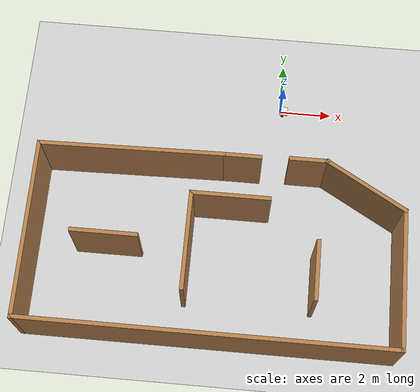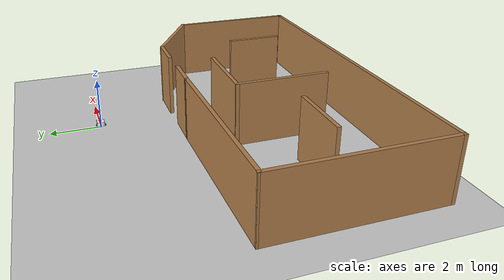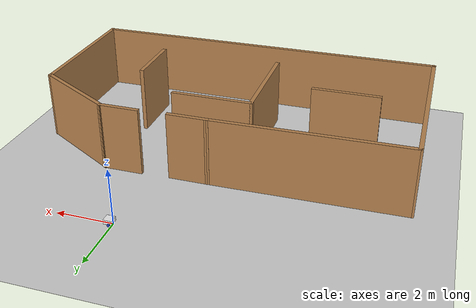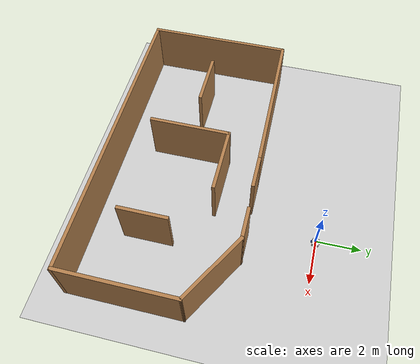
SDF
<sdf version="1.7">
 <world name="default">
  <light name="sun" type="directional">
   <pose>0 0 10 0 -0 0</pose>
   <diffuse>0.8 0.8 0.8 1</diffuse>
   <specular>0.2 0.2 0.2 1</specular>
   <attenuation>
    <range>1000</range>
    <constant>0.9</constant>
    <linear>0.01</linear>
    <quadratic>0.001</quadratic>
   </attenuation>
   <direction>-0.5 0.1 -0.9</direction>
   <spot><inner_angle>0</inner_angle><outer_angle>0</outer_angle><falloff>0</falloff></spot>
  </light>
  <model name="ground_plane">
   <static>1</static>
   <link name="link">
    <collision name="collision">
     <geometry><plane><normal>0 0 1</normal><size>100 100</size></plane></geometry>
     <surface>
      <contact><collide_bitmask>65535</collide_bitmask></contact>
      <friction><ode><mu>100</mu><mu2>50</mu2></ode></friction>
     </surface>
    </collision>
    <visual name="visual">
     <cast_shadows>0</cast_shadows>
     <geometry><plane><normal>0 0 1</normal><size>100 100</size></plane></geometry>
     <material>
      <script><uri>file://media/materials/scripts/gazebo.material</uri><name>Gazebo/Grey</name></script>
     </material>
    </visual>
   </link>
  </model>
  <gravity>0 0 -9.8</gravity>
  <magnetic_field>6e-06 2.3e-05 -4.2e-05</magnetic_field>
  <atmosphere type="adiabatic"/>
  <physics type="ode">
   <max_step_size>0.001</max_step_size>
   <real_time_factor>1</real_time_factor>
   <real_time_update_rate>1000</real_time_update_rate>
  </physics>
  <scene><ambient>0.4 0.4 0.4 1</ambient><background>0.7 0.7 0.7 1</background><shadows>1</shadows></scene>
  <audio><device>default</device></audio>
  <spherical_coordinates>
   <surface_model>EARTH_WGS84</surface_model>
   <latitude_deg>0</latitude_deg>
   <longitude_deg>0</longitude_deg>
   <elevation>0</elevation>
   <heading_deg>0</heading_deg>
  </spherical_coordinates>
  <model name="my_bot">
   <link name="base_link">
    <inertial>
     <pose>0.0725 0 0.05625 0 -0 0</pose>
     <mass>2</mass>
     <inertia>
      <ixx>0.0166719</ixx>
      <ixy>0</ixy>
      <ixz>0.00253125</ixz>
      <iyy>0.0197094</iyy>
      <iyz>0</iyz>
      <izz>0.0260375</izz>
     </inertia>
    </inertial>
    <collision name="base_link_fixed_joint_lump__chassis_collision">
     <pose>0.05 0 0.075 0 -0 0</pose>
     <geometry><box><size>0.3 0.3 0.15</size></box></geometry>
    </collision>
    <collision name="base_link_fixed_joint_lump__caster_wheel_collision_1">
     <pose>0.14 0 0 1.5708 -0 0</pose>
     <geometry><sphere><radius>0.05</radius></sphere></geometry>
     <surface><friction><ode><mu>0</mu><mu2>0</mu2></ode></friction></surface>
    </collision>
    <visual name="base_link_fixed_joint_lump__chassis_visual">
     <pose>0.05 0 0.075 0 -0 0</pose>
     <geometry><box><size>0.3 0.3 0.15</size></box></geometry>
     <material>
      <script><name>Gazebo/White</name><uri>file://media/materials/scripts/gazebo.material</uri></script>
     </material>
    </visual>
    <visual name="base_link_fixed_joint_lump__caster_wheel_visual_1">
     <pose>0.14 0 0 1.5708 -0 0</pose>
     <geometry><sphere><radius>0.05</radius></sphere></geometry>
     <material>
      <script><name>Gazebo/Black</name><uri>file://media/materials/scripts/gazebo.material</uri></script>
     </material>
    </visual>
   </link>
   <joint name="left_wheel_joint" type="revolute">
    <pose relative_to="base_link">0 0.175 0 -1.5708 0 0</pose>
    <parent>base_link</parent>
    <child>left_wheel</child>
    <axis>
     <xyz>0 0 1</xyz>
     <limit><lower>-1e+16</lower><upper>1e+16</upper></limit>
     <dynamics><spring_reference>0</spring_reference><spring_stiffness>0</spring_stiffness></dynamics>
    </axis>
   </joint>
   <link name="left_wheel">
    <pose relative_to="left_wheel_joint">0 0 0 0 -0 0</pose>
    <inertial>
     <mass>0.5</mass>
     <inertia><ixx>0.015</ixx><ixy>0</ixy><ixz>0</ixz><iyy>0.015</iyy><iyz>0</iyz><izz>0.0225</izz></inertia>
    </inertial>
    <collision name="left_wheel_collision">
     <geometry><cylinder><length>0.04</length><radius>0.05</radius></cylinder></geometry>
    </collision>
    <visual name="left_wheel_visual">
     <geometry><cylinder><length>0.04</length><radius>0.05</radius></cylinder></geometry>
     <material>
      <script><name>Gazebo/Blue</name><uri>file://media/materials/scripts/gazebo.material</uri></script>
     </material>
    </visual>
   </link>
   <joint name="right_wheel_joint" type="revolute">
    <pose relative_to="base_link">0 -0.175 0 1.5708 -0 0</pose>
    <parent>base_link</parent>
    <child>right_wheel</child>
    <axis>
     <xyz>0 0 -1</xyz>
     <limit><lower>-1e+16</lower><upper>1e+16</upper></limit>
     <dynamics><spring_reference>0</spring_reference><spring_stiffness>0</spring_stiffness></dynamics>
    </axis>
   </joint>
   <link name="right_wheel">
    <pose relative_to="right_wheel_joint">0 0 0 0 -0 0</pose>
    <inertial>
     <mass>0.5</mass>
     <inertia><ixx>0.015</ixx><ixy>0</ixy><ixz>0</ixz><iyy>0.015</iyy><iyz>0</iyz><izz>0.0225</izz></inertia>
    </inertial>
    <collision name="right_wheel_collision">
     <geometry><cylinder><length>0.04</length><radius>0.05</radius></cylinder></geometry>
    </collision>
    <visual name="right_wheel_visual">
     <geometry><cylinder><length>0.04</length><radius>0.05</radius></cylinder></geometry>
     <material>
      <script><name>Gazebo/Blue</name><uri>file://media/materials/scripts/gazebo.material</uri></script>
     </material>
    </visual>
   </link>
   <static>0</static>
   <plugin name="diff_drive" filename="libgazebo_ros_diff_drive.so">
    <left_joint>left_wheel_joint</left_joint>
    <right_joint>right_wheel_joint</right_joint>
    <wheel_separation>0.35</wheel_separation>
    <wheel_diameter>0.1</wheel_diameter>
    <max_wheel_torque>200</max_wheel_torque>
    <max_wheel_acceleration>10.0</max_wheel_acceleration>
    <odometry_frame>odom</odometry_frame>
    <robot_base_frame>base_link</robot_base_frame>
    <publish_odom>1</publish_odom>
    <publish_odom_tf>1</publish_odom_tf>
    <publish_wheel_tf>1</publish_wheel_tf>
   </plugin>
   <pose>0.07631 0.000812 0.049999 7e-06 -1e-05 -0.001769</pose>
  </model>
  <model name="walls1">
   <pose>-2.10577 -4.94 0 0 -0 0</pose>
   <link name="Wall_1">
    <collision name="Wall_1_Collision">
     <geometry><box><size>1.5 0.15 2.5</size></box></geometry>
     <pose>0 0 1.25 0 -0 0</pose>
    </collision>
    <visual name="Wall_1_Visual">
     <pose>0 0 1.25 0 -0 0</pose>
     <geometry><box><size>1.5 0.15 2.5</size></box></geometry>
     <material>
      <script><uri>file://media/materials/scripts/gazebo.material</uri><name>Gazebo/Wood</name></script>
      <ambient>1 1 1 1</ambient>
     </material>
     <meta><layer>0</layer></meta>
    </visual>
    <pose>0.720766 1.86 0 0 -0 0</pose>
   </link>
   <link name="Wall_10">
    <collision name="Wall_10_Collision">
     <geometry><box><size>7.00995 0.15 2.5</size></box></geometry>
     <pose>0 0 1.25 0 -0 0</pose>
    </collision>
    <visual name="Wall_10_Visual">
     <pose>0 0 1.25 0 -0 0</pose>
     <geometry><box><size>7.00995 0.15 2.5</size></box></geometry>
     <material>
      <script><uri>file://media/materials/scripts/gazebo.material</uri><name>Gazebo/Wood</name></script>
      <ambient>1 1 1 1</ambient>
     </material>
     <meta><layer>0</layer></meta>
    </visual>
    <pose>-3.38364 1.7975 0 0 -0 0.018223</pose>
   </link>
   <link name="Wall_13">
    <collision name="Wall_13_Collision">
     <geometry><box><size>3 0.15 2.5</size></box></geometry>
     <pose>0 0 1.25 0 -0 0</pose>
    </collision>
    <visual name="Wall_13_Visual">
     <pose>0 0 1.25 0 -0 0</pose>
     <geometry><box><size>3 0.15 2.5</size></box></geometry>
     <material>
      <script><uri>file://media/materials/scripts/gazebo.material</uri><name>Gazebo/Wood</name></script>
      <ambient>1 1 1 1</ambient>
     </material>
     <meta><layer>0</layer></meta>
    </visual>
    <pose>0.424034 0.261416 0 0 -0 3.14159</pose>
   </link>
   <link name="Wall_14">
    <collision name="Wall_14_Collision">
     <geometry><box><size>3.75 0.15 2.5</size></box></geometry>
     <pose>0 0 1.25 0 -0 0</pose>
    </collision>
    <visual name="Wall_14_Visual">
     <pose>0 0 1.25 0 -0 0</pose>
     <geometry><box><size>3.75 0.15 2.5</size></box></geometry>
     <material>
      <script><uri>file://media/materials/scripts/gazebo.material</uri><name>Gazebo/Wood</name></script>
      <ambient>1 1 1 1</ambient>
     </material>
     <meta><layer>0</layer></meta>
    </visual>
    <pose>-1.00097 -1.53858 0 0 -0 -1.5708</pose>
   </link>
   <link name="Wall_16">
    <collision name="Wall_16_Collision">
     <geometry><box><size>2.5 0.15 2.5</size></box></geometry>
     <pose>0 0 1.25 0 -0 0</pose>
    </collision>
    <visual name="Wall_16_Visual">
     <pose>0 0 1.25 0 -0 0</pose>
     <geometry><box><size>2.5 0.15 2.5</size></box></geometry>
     <material>
      <script><uri>file://media/materials/scripts/gazebo.material</uri><name>Gazebo/Wood</name></script>
      <ambient>1 1 1 1</ambient>
     </material>
     <meta><layer>0</layer></meta>
    </visual>
    <pose>-3.9956 -1.52869 0 0 -0 0</pose>
   </link>
   <link name="Wall_18">
    <collision name="Wall_18_Collision">
     <geometry><box><size>2.25 0.15 2.5</size></box></geometry>
     <pose>0 0 1.25 0 -0 0</pose>
    </collision>
    <visual name="Wall_18_Visual">
     <pose>0 0 1.25 0 -0 0</pose>
     <geometry><box><size>2.25 0.15 2.5</size></box></geometry>
     <material>
      <script><uri>file://media/materials/scripts/gazebo.material</uri><name>Gazebo/Wood</name></script>
      <ambient>1 1 1 1</ambient>
     </material>
     <meta><layer>0</layer></meta>
    </visual>
    <pose>3.7196 -2.25687 0 0 -0 -1.5708</pose>
   </link>
   <link name="Wall_3">
    <collision name="Wall_3_Collision">
     <geometry><box><size>1.5 0.15 2.5</size></box></geometry>
     <pose>0 0 1.25 0 -0 0</pose>
    </collision>
    <visual name="Wall_3_Visual">
     <pose>0 0 1.25 0 -0 0</pose>
     <geometry><box><size>1.5 0.15 2.5</size></box></geometry>
     <material>
      <script><uri>file://media/materials/scripts/gazebo.material</uri><name>Gazebo/Wood</name></script>
      <ambient>1 1 1 1</ambient>
     </material>
     <meta><layer>0</layer></meta>
    </visual>
    <pose>3.21077 1.91 0 0 -0 0</pose>
   </link>
   <link name="Wall_4">
    <collision name="Wall_4_Collision">
     <geometry><box><size>3.5 0.15 2.5</size></box></geometry>
     <pose>0 0 1.25 0 -0 0</pose>
    </collision>
    <visual name="Wall_4_Visual">
     <pose>0 0 1.25 0 -0 0</pose>
     <geometry><box><size>3.5 0.15 2.5</size></box></geometry>
     <material>
      <script><uri>file://media/materials/scripts/gazebo.material</uri><name>Gazebo/Wood</name></script>
      <ambient>1 1 1 1</ambient>
     </material>
     <meta><layer>0</layer></meta>
    </visual>
    <pose>5.33636 1.0725 0 0 -0 -0.523599</pose>
   </link>
   <link name="Wall_7">
    <collision name="Wall_7_Collision">
     <geometry><box><size>5.25 0.15 2.5</size></box></geometry>
     <pose>0 0 1.25 0 -0 0</pose>
    </collision>
    <visual name="Wall_7_Visual">
     <pose>0 0 1.25 0 -0 0</pose>
     <geometry><box><size>5.25 0.15 2.5</size></box></geometry>
     <material>
      <script><uri>file://media/materials/scripts/gazebo.material</uri><name>Gazebo/Wood</name></script>
      <ambient>1 1 1 1</ambient>
     </material>
     <meta><layer>0</layer></meta>
    </visual>
    <pose>6.78695 -2.315 0 0 -0 -1.5708</pose>
   </link>
   <link name="Wall_8">
    <collision name="Wall_8_Collision">
     <geometry><box><size>13.75 0.15 2.5</size></box></geometry>
     <pose>0 0 1.25 0 -0 0</pose>
    </collision>
    <visual name="Wall_8_Visual">
     <pose>0 0 1.25 0 -0 0</pose>
     <geometry><box><size>13.75 0.15 2.5</size></box></geometry>
     <material>
      <script><uri>file://media/materials/scripts/gazebo.material</uri><name>Gazebo/Wood</name></script>
      <ambient>1 1 1 1</ambient>
     </material>
     <meta><layer>0</layer></meta>
    </visual>
    <pose>-0.013049 -4.865 0 0 -0 3.14159</pose>
   </link>
   <link name="Wall_9">
    <collision name="Wall_9_Collision">
     <geometry><box><size>6.75 0.15 2.5</size></box></geometry>
     <pose>0 0 1.25 0 -0 0</pose>
    </collision>
    <visual name="Wall_9_Visual">
     <pose>0 0 1.25 0 -0 0</pose>
     <geometry><box><size>6.75 0.15 2.5</size></box></geometry>
     <material>
      <script><uri>file://media/materials/scripts/gazebo.material</uri><name>Gazebo/Wood</name></script>
      <ambient>1 1 1 1</ambient>
     </material>
     <meta><layer>0</layer></meta>
    </visual>
    <pose>-6.81305 -1.565 0 0 -0 1.5708</pose>
   </link>
   <static>1</static>
  </model>
 </world>
</sdf>
